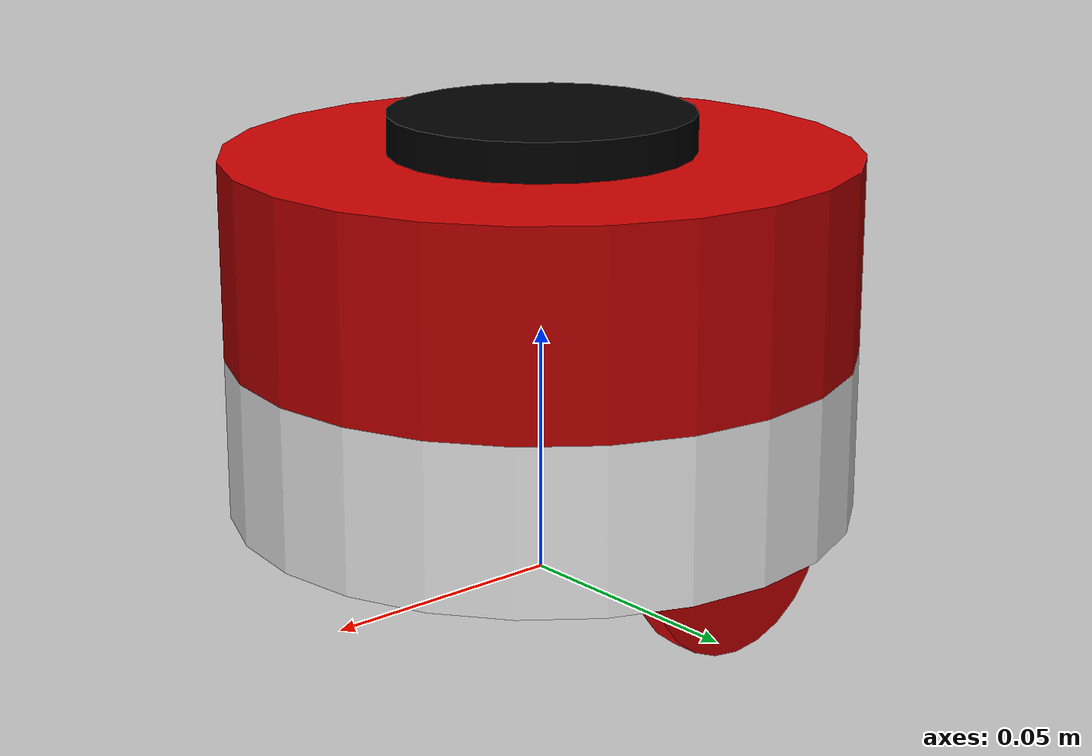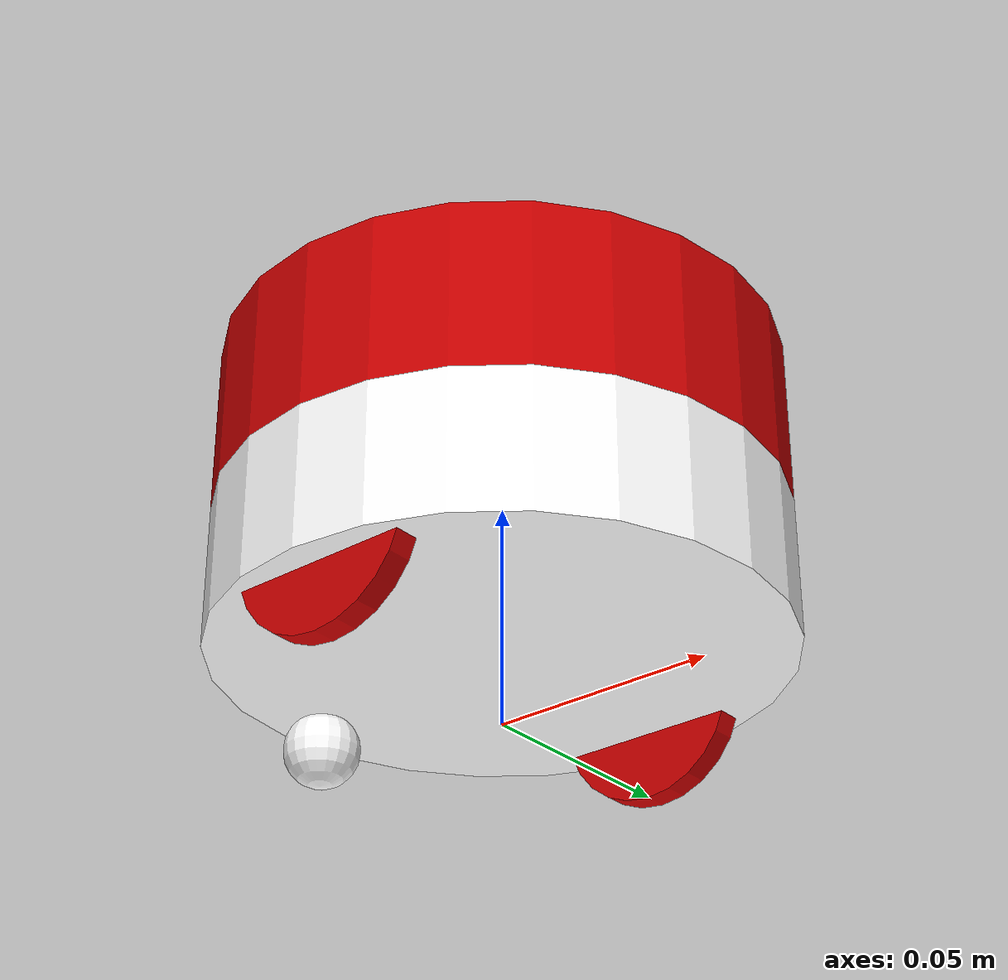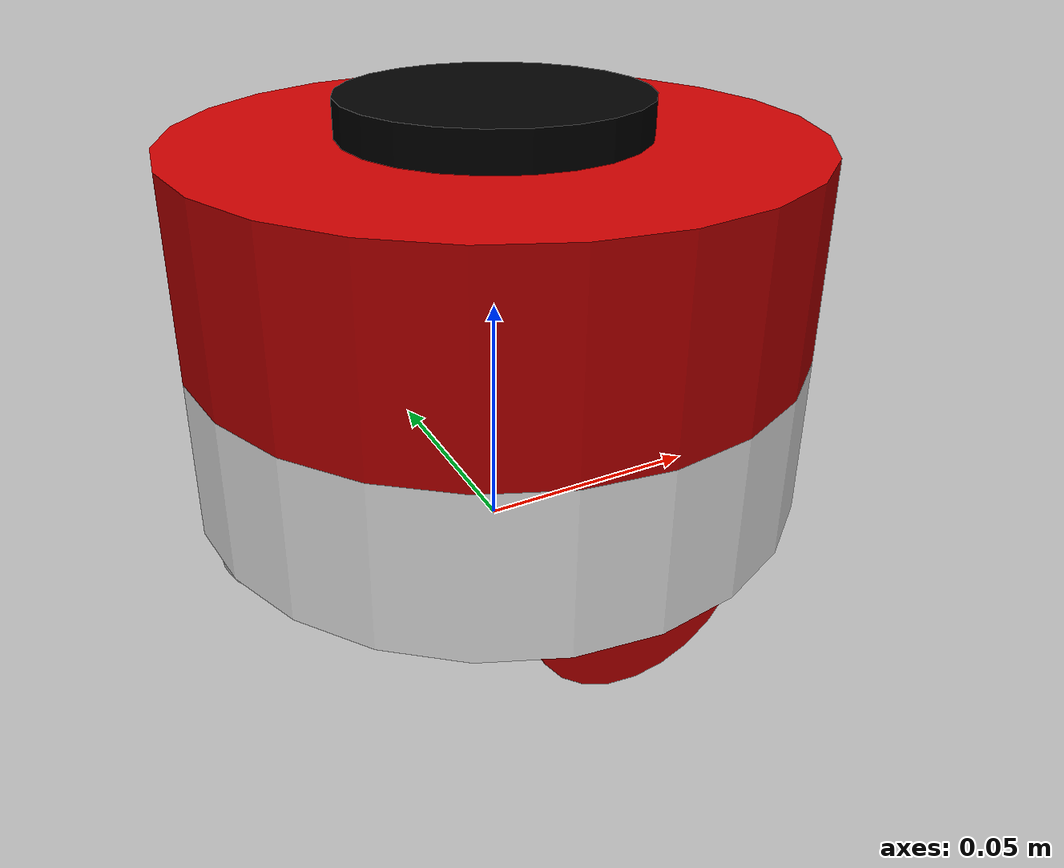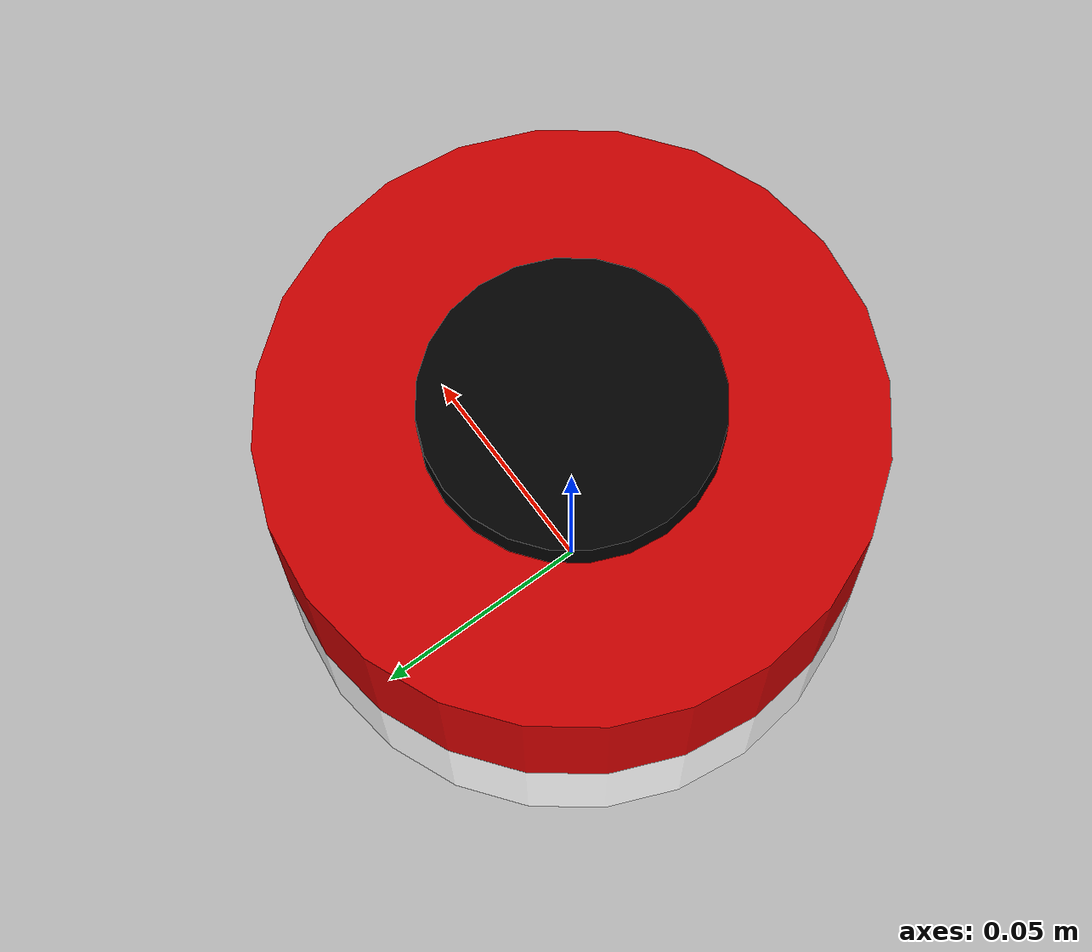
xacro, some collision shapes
<?xml version="1.0" ?>
<robot name="makerspet_mini" xmlns:xacro="http://ros.org/wiki/xacro">
  <!-- https://classic.gazebosim.org/tutorials?tut=ros_gzplugins&cat=connect_ros -->
  <!-- https://classic.gazebosim.org/tutorials?tut=ros_urdf&cat=connect_ros -->
  <!-- https://github.com/ROBOTIS-GIT/turtlebot3_simulations/blob/humble-devel/turtlebot3_gazebo/models/turtlebot3_waffle_pi/model.sdf -->
  <!-- https://github.com/ROBOTIS-GIT/turtlebot3/blob/humble-devel/turtlebot3_description/urdf/turtlebot3_waffle_pi.urdf -->

  <!-- ****************** ROBOT DIMENSIONS ****************** -->
  <!-- Units: meters, degrees, kg, N*m, m/s2 -->
  <xacro:property name="wheel_diameter" value="0.043"/>
  <xacro:property name="wheel_width" value="0.0055"/>
  <xacro:property name="caster_diameter" value="0.017"/>
  <!-- Caster center to base edge -->
  <xacro:property name="caster_inset" value="0.011"/>
  <xacro:property name="floor_clearance" value="0.0149"/>
  <xacro:property name="base_diameter" value="0.124"/>
  <xacro:property name="wheel_base" value="0.105043"/>
  <xacro:property name="lower_cylinder_height" value="0.032"/>
  <xacro:property name="laser_puck_height" value="0.016"/>
  <xacro:property name="laser_puck_diameter" value="0.06"/>
  <xacro:property name="laser_puck_offset" value="0.0384"/>
  <xacro:property name="laser_motor_diameter" value="0.02"/>
  <xacro:property name="lidar_motor_x_offset" value="0.04"/>
  <xacro:property name="lidar_motor_z_offset" value="0.012"/>
  <xacro:property name="laser_motor_height" value="0.01"/>
  <xacro:property name="head_height" value="0.0388"/>
  <xacro:property name="lidar_center_offset" value="0.000"/>

  <xacro:property name="motor_stall_torque" value="0.171616375"/>
  <xacro:property name="max_wheel_acceleration" value="1"/>
  <xacro:property name="lower_cylinder_mass" value="0.250"/>
  <!-- caster and battery weight -->
  <xacro:property name="caster_mass" value="0.050"/>
  <xacro:property name="wheel_mass" value="0.050"/>
  <xacro:property name="laser_puck_mass" value="0.150"/>
  <xacro:property name="laser_motor_mass" value="0.050"/>
  <xacro:property name="head_mass" value="0.200"/>

  <xacro:property name="DEG2RAD" value="0.0174533"/>

  <material name="black">
      <color rgba="0 0 0 1.0"/>
  </material>

  <material name="dark">
    <color rgba="0.3 0.3 0.3 1.0"/>
  </material>

  <material name="light_black">
    <color rgba="0.4 0.4 0.4 1.0"/>
  </material>

  <material name="blue">
    <color rgba="0 0 0.8 1.0"/>
  </material>

  <material name="green">
    <color rgba="0 0.8 0 1.0"/>
  </material>

  <material name="grey">
    <color rgba="0.5 0.5 0.5 1.0"/>
  </material>

  <material name="orange">
    <color rgba="1.0 0.4235 0.0392 1.0"/>
  </material>

  <material name="brown">
    <color rgba="0.8706 0.8118 0.7647 1.0"/>
  </material>

  <material name="red">
    <color rgba="0.8 0 0 1.0"/>
  </material>

  <material name="yellow">
    <color rgba="0.8 0.8 0 1.0"/>
  </material>

  <material name="white">
    <color rgba="1.0 1.0 1.0 1.0"/>
  </material>

  <xacro:macro name="solid_box_inertia" params="m x y z">
    <inertial>
      <origin xyz="0 0 0" rpy="${pi/2} 0 ${pi/2}"/>
      <mass value="${m}"/>
      <inertia ixx="${m*(y*y+z*z)/12}" ixy="0" ixz="0" iyy="${m*(x*x+z*z)/12}" iyz="0" izz="${m*(x*x+y*y)/12}"/>
    </inertial>
  </xacro:macro>

  <xacro:macro name="solid_cylinder_inertia" params="m r h">
    <inertial>
      <origin xyz="0 0 0" rpy="${pi/2} 0 0" />
      <mass value="${m}"/>
      <inertia ixx="${m*(3*r*r+h*h)/12}" ixy="0" ixz="0" iyy="${m*(3*r*r+h*h)/12}" iyz="0" izz="${m*r*r/2}"/>
    </inertial>
  </xacro:macro>

  <xacro:macro name="hollow_cylinder_inertia" params="m ri ro h">
    <inertial>
      <origin xyz="0 0 0" rpy="${pi/2} 0 0" />
      <mass value="${m}"/>
      <inertia ixx="${m*(3*(ri*ri+ro*ro)+h*h)/12}" ixy="0" ixz="0" iyy="${m*(3*(ri*ri+ro*ro) + h*h)/12}" iyz="0" izz="${m*(ri*ri+ro*ro)/2}"/>
    </inertial>
  </xacro:macro>

  <xacro:macro name="thin_cylindrical_shell_inertia" params="m r h">
    <inertial>
      <origin xyz="0 0 0" rpy="${pi/2} 0 0" />
      <mass value="${m}"/>
      <inertia ixx="${m*(6*r*r+h*h)/12}" ixy="0" ixz="0" iyy="${m*(6*r*r+h*h)/12}" iyz="0" izz="${m*r*r}"/>
    </inertial>
  </xacro:macro>

  <xacro:macro name="solid_sphere_inertia" params="m r">
    <inertial>
      <mass value="${m}"/>
      <inertia ixx="${2*m*r*r/5}" ixy="0" ixz="0" iyy="${2*m*r*r/5}" iyz="0" izz="${2*m*r*r/5}"/>
    </inertial>
  </xacro:macro>

  <xacro:macro name="thin_spherical_shell_inertia" params="m r">
    <inertial>
      <mass value="${m}"/>
      <inertia ixx="${2*m*r*r/3}" ixy="0" ixz="0" iyy="${2*m*r*r/3}" iyz="0" izz="${2*m*r*r/3}"/>
    </inertial>
  </xacro:macro>

  <xacro:macro name="solid_hemisphere_inertia" params="m r">
    <inertial>
      <mass value="${m}"/>
      <inertia ixx="${83*m*r*r/320}" ixy="0" ixz="0" iyy="${83*m*r*r/320}" iyz="0" izz="${2*m*r*r/5}"/>
    </inertial>
  </xacro:macro>

  <xacro:macro name="solid_ellipsoid_inertia" params="m x y z">
    <inertial>
      <mass value="${m}"/>
      <inertia ixx="${m*(y*y+z*z)/5}" ixy="0" ixz="0" iyy="${m*(x*x+z*z)/5}" iyz="0" izz="${m*(x*x+y*y)/5}"/>
    </inertial>
  </xacro:macro>

  <xacro:macro name="solid_semi_ellipsoid_inertia" params="m x y z">
    <inertial>
      <mass value="${m}"/>
      <inertia ixx="${m*(y*y+z*z)/10}" ixy="0" ixz="0" iyy="${m*(x*x+z*z)/10}" iyz="0" izz="${m*(x*x+y*y)/10}"/>
    </inertial>
  </xacro:macro>

  <link name="base_footprint"/>

  <joint name="base_joint" type="fixed">
    <parent link="base_footprint"/>
    <child link="base_link"/>
    <origin xyz="0 0 ${floor_clearance}" rpy="0 0 0"/>
  </joint>

  <link name="base_link">
    <visual>
      <origin xyz="0 0 ${lower_cylinder_height/2}" rpy="0 0 0"/>
      <geometry>
        <cylinder length="${lower_cylinder_height}" radius="${base_diameter/2}"/>
      </geometry>
      <material name="white"/>
    </visual>

    <collision>
      <origin xyz="0 0 ${lower_cylinder_height/2}" rpy="0 0 0"/>
      <geometry>
        <cylinder length="${lower_cylinder_height}" radius="${base_diameter/2}"/>
      </geometry>
    </collision>

    <xacro:solid_cylinder_inertia m="${lower_cylinder_mass}" r="${base_diameter/2}" h="${lower_cylinder_height}"/>
  </link>

  <joint name="caster_joint" type="fixed">
    <parent link="base_link"/>
    <child link="caster_link"/>
    <origin xyz="${caster_inset-base_diameter/2} 0 ${caster_diameter/2-floor_clearance}" rpy="0 0 0"/>
  </joint>

  <link name="caster_link">
    <visual>
      <origin xyz="0 0 0" rpy="0 0 0"/>
      <geometry>
        <sphere radius="${caster_diameter/2}"/>
      </geometry>
      <material name="white"/>
    </visual>

   <collision>
      <origin xyz="0 0 0" rpy="0 0 0"/>
      <geometry>
        <sphere radius="${caster_diameter/2}"/>
      </geometry>
    </collision>

    <xacro:solid_sphere_inertia m="${caster_mass}" r="${caster_diameter/2}"/>
  </link>

  <joint name="wheel_left_joint" type="continuous">
    <parent link="base_link"/>
    <child link="wheel_left_link"/>
    <origin xyz="0 ${wheel_base/2} ${wheel_diameter/2-floor_clearance}" rpy="-${pi/2} 0 0"/>
    <axis xyz="0 0 -1"/>
  </joint>

  <link name="wheel_left_link">
    <visual>
      <origin xyz="0 0 0" rpy="0 0 0"/>
      <geometry>
        <cylinder length="${wheel_width}" radius="${wheel_diameter/2}"/>
      </geometry>
      <material name="red"/>
    </visual>

    <collision>
      <origin xyz="0 0 0" rpy="0 0 0"/>
      <geometry>
        <cylinder length="${wheel_width}" radius="${wheel_diameter/2}"/>
      </geometry>
    </collision>

    <xacro:solid_cylinder_inertia m="${wheel_mass}" r="${wheel_diameter/2}" h="${wheel_width}"/>
  </link>

  <joint name="wheel_right_joint" type="continuous">
    <parent link="base_link"/>
    <child link="wheel_right_link"/>
    <origin xyz="0 ${-wheel_base/2} ${wheel_diameter/2-floor_clearance}" rpy="-${pi/2} 0 0"/>
    <axis xyz="0 0 1"/>
  </joint>

  <link name="wheel_right_link">
    <visual>
      <origin xyz="0 0 0" rpy="0 0 0"/>
      <geometry>
        <cylinder length="${wheel_width}" radius="${wheel_diameter/2}"/>
      </geometry>
      <material name="red"/>
    </visual>

    <collision>
      <origin xyz="0 0 0" rpy="0 0 0"/>
      <geometry>
        <cylinder length="${wheel_width}" radius="${wheel_diameter/2}"/>
      </geometry>
    </collision>

    <xacro:solid_cylinder_inertia m="${wheel_mass}" r="${wheel_diameter/2}" h="${wheel_width}"/>
  </link>

  <joint name="scan_joint" type="fixed">
    <parent link="base_link"/>
    <child link="base_scan"/>
    <origin xyz="${lidar_center_offset} 0 ${lower_cylinder_height + laser_puck_offset}" rpy="0 -${pi} 0"/>
  </joint>

  <link name="base_scan">
    <visual>
      <origin xyz="0 0 0" rpy="0 0 0"/>
      <geometry>
        <cylinder length="${laser_puck_height}" radius="${laser_puck_diameter/2}"/>
      </geometry>
      <material name="black"/>
    </visual>

    <collision>
      <origin xyz="0 0 0" rpy="0 0 0"/>
      <geometry>
        <cylinder length="${laser_puck_height}" radius="${laser_puck_diameter/2}"/>
      </geometry>
    </collision>

    <xacro:solid_cylinder_inertia m="${laser_puck_mass}" r="${laser_puck_diameter/2}" h="${laser_puck_height}"/>
  </link>

  <joint name="scan_motor_joint" type="fixed">
    <parent link="base_scan"/>
    <child link="scan_motor"/>
    <origin xyz="${lidar_motor_x_offset} 0 ${lidar_motor_z_offset}" rpy="0 -${pi} 0"/>
  </joint>

  <link name="scan_motor">
    <visual>
      <origin xyz="0 0 0" rpy="0 0 0"/>
      <geometry>
        <cylinder length="${laser_motor_height}" radius="${laser_motor_diameter/2}"/>
      </geometry>
      <material name="black"/>
    </visual>

    <collision>
      <origin xyz="0 0 0" rpy="0 0 0"/>
      <geometry>
        <cylinder length="${laser_motor_height}" radius="${laser_motor_diameter/2}"/>
      </geometry>
    </collision>

    <xacro:solid_cylinder_inertia m="${laser_motor_mass}" r="${laser_motor_diameter/2}" h="${laser_motor_height}"/>
  </link>

  <joint name="head_joint" type="fixed">
    <parent link="base_link"/>
    <child link="head_link"/>
    <origin xyz="0 0 ${lower_cylinder_height}" rpy="0 0 0"/>
  </joint>

  <link name="head_link">
    <visual>
      <origin xyz="0 0 0" rpy="0 0 0"/>
      <geometry>
        <mesh filename="package://makerspet_mini/mesh/hemisphere.stl" scale="${0.001*base_diameter} ${0.001*base_diameter} ${0.001*head_height*2}"/>
      </geometry>
      <material name="red"/>
    </visual>

    <collision>
      <origin xyz="0 0 ${head_height/2}" rpy="0 0 0"/>
      <geometry>
        <cylinder length="${head_height}" radius="${base_diameter/2}"/>
      </geometry>
    </collision>

    <xacro:solid_semi_ellipsoid_inertia m="${head_mass}" x="${base_diameter/2}" y="${base_diameter/2}" z="${head_height}"/>
  </link>

  <gazebo>
    <plugin name="differential_drive_plugin" filename="libgazebo_ros_diff_drive.so">

      <!-- /opt/ros/humble/share/gazebo_plugins/worlds/gazebo_ros_diff_drive_demo.world -->
      <!-- https://github.com/ros-simulation/gazebo_ros_pkgs/blob/foxy/gazebo_plugins/src/gazebo_ros_diff_drive.cpp -->

      <!-- ros -->
        <!-- remapping -->
        <!-- namespace -->
      <!-- /ros -->

      <update_rate>30</update_rate>

      <left_joint>wheel_left_joint</left_joint>
      <right_joint>wheel_right_joint</right_joint>

      <wheel_separation>${wheel_base}</wheel_separation>
      <wheel_diameter>${wheel_diameter}</wheel_diameter>

      <max_wheel_torque>${motor_stall_torque}</max_wheel_torque>
      <max_wheel_acceleration>${max_wheel_acceleration}</max_wheel_acceleration>

      <command_topic>cmd_vel</command_topic>

      <publish_odom>true</publish_odom>
      <publish_odom_tf>true</publish_odom_tf>
      <publish_wheel_tf>false</publish_wheel_tf>

      <odometry_topic>odom</odometry_topic>
      <odometry_frame>odom</odometry_frame>
      <robot_base_frame>base_footprint</robot_base_frame>
    </plugin>
  </gazebo>

  <gazebo>
    <plugin name="joint_state_plugin" filename="libgazebo_ros_joint_state_publisher.so">
      <!-- https://github.com/ros-simulation/gazebo_ros_pkgs/blob/foxy/gazebo_plugins/src/gazebo_ros_joint_state_publisher.cpp -->
      <ros>
        <!-- namespace -->
        <remapping>~/out:=joint_states</remapping>
      </ros>
      <update_rate>30</update_rate>
      <joint_name>wheel_left_joint</joint_name>
      <joint_name>wheel_right_joint</joint_name>
    </plugin>
  </gazebo>

  <gazebo reference="base_scan">
    <sensor type="ray" name="laser_scan_sensor">
      <visualize>false</visualize>
      <always_on>true</always_on>
      <update_rate>5</update_rate>
      <ray>
        <scan>
          <horizontal>
            <samples>360</samples>
            <resolution>1</resolution>
            <min_angle>0</min_angle>
            <max_angle>${2*pi}</max_angle>
          </horizontal>
        </scan>
        <range>
          <min>0.1</min>
          <max>10.0</max>
          <resolution>0.02</resolution>
        </range>
        <noise>
          <type>gaussian</type>
          <mean>0.0</mean>
          <stddev>0.01</stddev>
        </noise>
      </ray>
      <plugin name="laser_scan_plugin" filename="libgazebo_ros_ray_sensor.so">
        <!-- https://github.com/ros-simulation/gazebo_ros_pkgs/blob/foxy/gazebo_plugins/src/gazebo_ros_ray_sensor.cpp -->
        <ros>
          <!-- namespace -->
          <remapping>~/out:=scan</remapping>
        </ros>
        <output_type>sensor_msgs/LaserScan</output_type>
        <frame_name>base_scan</frame_name>
      </plugin>
    </sensor>
  </gazebo>

  <gazebo reference="wheel_left_link">
    <mu1>0.2</mu1>
    <mu2>0.2</mu2>
    <material>Gazebo/Red</material>

    <!-- Turtlebot3 SDF -->
  </gazebo>

  <gazebo reference="wheel_right_link">
    <mu1>0.2</mu1>
    <mu2>0.2</mu2>
    <material>Gazebo/Red</material>
  </gazebo>

  <gazebo reference="caster_link">
    <mu1>0.2</mu1>
    <mu2>0.2</mu2>
    <material>Gazebo/White</material>
  </gazebo>

  <gazebo reference="head_link">
    <material>Gazebo/Red</material>
  </gazebo>

  <gazebo reference="base_link">
    <material>Gazebo/White</material>
  </gazebo>

  <gazebo reference="base_scan">
    <material>Gazebo/Black</material>
  </gazebo>
</robot>
